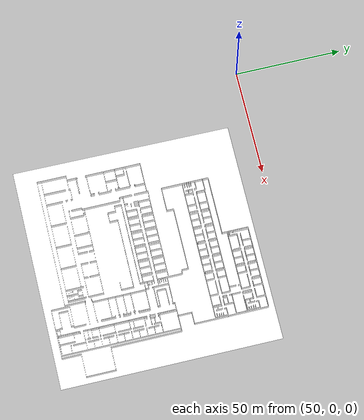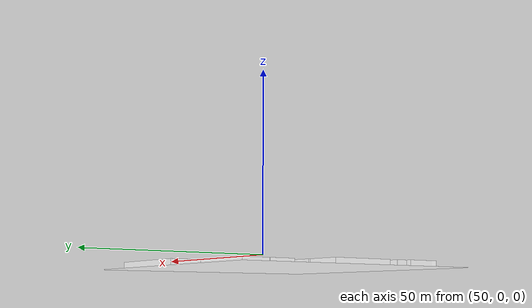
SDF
<?xml version='1.0' encoding='utf-8'?>
<sdf version="1.7">
  <model name="psychology_planta_1">
    <static>true</static>
    <link name="floor_1">
      <visual name="visual">
        <geometry>
          <mesh>
            <uri>model://psychology_planta_1/meshes/floor_1.obj</uri>
          </mesh>
        </geometry>
        <material>
          <diffuse>1.0 1.0 1.0</diffuse>
          <specular>0.1 0.1 0.1</specular>
          <pbr>
            <metal>
              <metalness>0.0</metalness>
              <albedo_map>model://psychology_planta_1/meshes/blue_linoleum.png</albedo_map>
            </metal>
          </pbr>
          <script>
            <uri>model://psychology_planta_1/meshes/</uri>
            <name>floor_1_Diffuse</name>
          </script>
        </material>
      </visual>
      <collision name="collision">
        <geometry>
          <mesh>
            <uri>model://psychology_planta_1/meshes/floor_1.obj</uri>
          </mesh>
        </geometry>
        <surface>
          <contact>
            <collide_bitmask>0x01</collide_bitmask>
          </contact>
        </surface>
      </collision>
    </link>
    <link name="wall_1">
      <visual name="wall_1">
        <geometry>
          <mesh>
            <uri>model://psychology_planta_1/meshes/wall_1.obj</uri>
          </mesh>
        </geometry>
        <transparency>0.0</transparency>
        <material>
          <diffuse>1.0 1.0 1.0</diffuse>
          <specular>0.1 0.1 0.1</specular>
          <pbr>
            <metal>
              <metalness>0.0</metalness>
              <albedo_map>model://psychology_planta_1/meshes/default.png</albedo_map>
            </metal>
          </pbr>
          <script>
            <uri>model://psychology_planta_1/meshes/</uri>
            <name>wall_1_Diffuse</name>
          </script>
        </material>
      </visual>
      <collision name="collision">
        <geometry>
          <mesh>
            <uri>model://psychology_planta_1/meshes/wall_1.obj</uri>
          </mesh>
        </geometry>
        <surface>
          <contact>
            <collide_bitmask>0x01</collide_bitmask>
          </contact>
        </surface>
      </collision>
      <pose>81.36267420752922 -108.99471114402195 0 0 0 0</pose>
    </link>
  </model>
</sdf>
